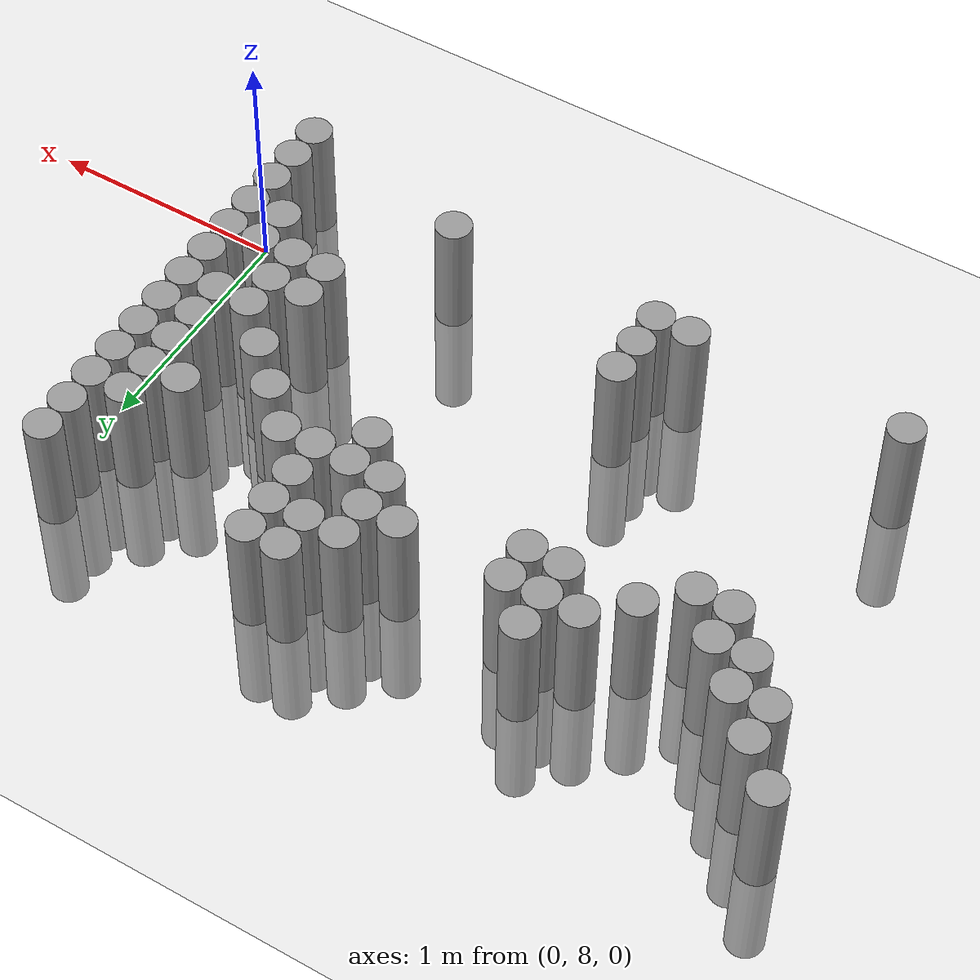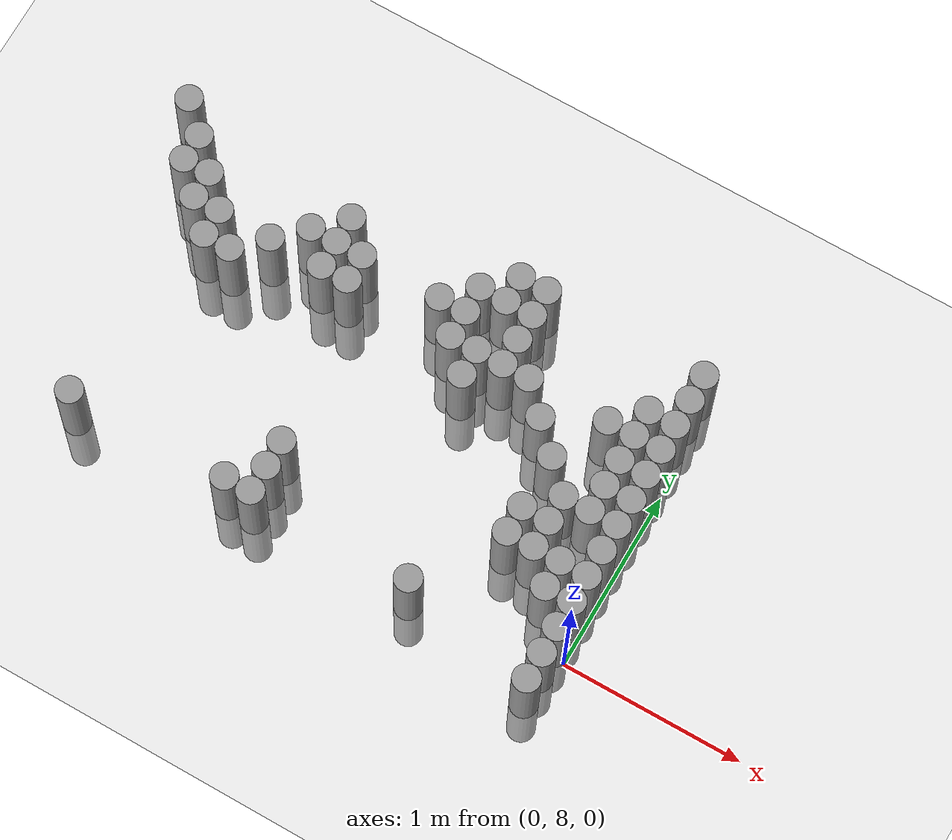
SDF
<sdf version="1.6">
 <world name="default">
  <model name="ground_plane">
   <static>1</static>
   <link name="link">
    <collision name="collision">
     <geometry><plane><normal>0 0 1</normal><size>100 100</size></plane></geometry>
     <surface><friction><ode><mu>100</mu><mu2>50</mu2></ode></friction></surface>
    </collision>
    <visual name="visual">
     <cast_shadows>0</cast_shadows>
     <geometry><plane><normal>0 0 1</normal><size>100 100</size></plane></geometry>
     <material>
      <script><uri>file://media/materials/scripts/gazebo.material</uri><name>Gazebo/Grey</name></script>
     </material>
    </visual>
   </link>
  </model>
  <model name="unit_cylinder_180">
   <pose>-3.075000 9.525000 0.000000 0.000000 0.000000 0.000000</pose>
   <link name="link">
    <inertial>
     <mass>1</mass>
     <inertia><ixx>0.145833</ixx><ixy>0</ixy><ixz>0</ixz><iyy>0.145833</iyy><iyz>0</iyz><izz>0.125</izz></inertia>
    </inertial>
    <collision name="collision">
     <geometry><cylinder><radius>0.075000</radius><length>1</length></cylinder></geometry>
    </collision>
    <visual name="visual">
     <geometry><cylinder><radius>0.075000</radius><length>1</length></cylinder></geometry>
     <material>
      <script><name>Gazebo/Grey</name><uri>file://media/materials/scripts/gazebo.material</uri></script>
     </material>
    </visual>
   </link>
  </model>
  <model name="unit_cylinder_184">
   <pose>-2.925000 9.225000 0.000000 0.000000 0.000000 0.000000</pose>
   <link name="link">
    <inertial>
     <mass>1</mass>
     <inertia><ixx>0.145833</ixx><ixy>0</ixy><ixz>0</ixz><iyy>0.145833</iyy><iyz>0</iyz><izz>0.125</izz></inertia>
    </inertial>
    <collision name="collision">
     <geometry><cylinder><radius>0.075000</radius><length>1</length></cylinder></geometry>
    </collision>
    <visual name="visual">
     <geometry><cylinder><radius>0.075000</radius><length>1</length></cylinder></geometry>
     <material>
      <script><name>Gazebo/Grey</name><uri>file://media/materials/scripts/gazebo.material</uri></script>
     </material>
    </visual>
   </link>
  </model>
  <model name="unit_cylinder_185">
   <pose>-2.925000 9.375000 0.000000 0.000000 0.000000 0.000000</pose>
   <link name="link">
    <inertial>
     <mass>1</mass>
     <inertia><ixx>0.145833</ixx><ixy>0</ixy><ixz>0</ixz><iyy>0.145833</iyy><iyz>0</iyz><izz>0.125</izz></inertia>
    </inertial>
    <collision name="collision">
     <geometry><cylinder><radius>0.075000</radius><length>1</length></cylinder></geometry>
    </collision>
    <visual name="visual">
     <geometry><cylinder><radius>0.075000</radius><length>1</length></cylinder></geometry>
     <material>
      <script><name>Gazebo/Grey</name><uri>file://media/materials/scripts/gazebo.material</uri></script>
     </material>
    </visual>
   </link>
  </model>
  <model name="unit_cylinder_187">
   <pose>-2.775000 7.875000 0.000000 0.000000 0.000000 0.000000</pose>
   <link name="link">
    <inertial>
     <mass>1</mass>
     <inertia><ixx>0.145833</ixx><ixy>0</ixy><ixz>0</ixz><iyy>0.145833</iyy><iyz>0</iyz><izz>0.125</izz></inertia>
    </inertial>
    <collision name="collision">
     <geometry><cylinder><radius>0.075000</radius><length>1</length></cylinder></geometry>
    </collision>
    <visual name="visual">
     <geometry><cylinder><radius>0.075000</radius><length>1</length></cylinder></geometry>
     <material>
      <script><name>Gazebo/Grey</name><uri>file://media/materials/scripts/gazebo.material</uri></script>
     </material>
    </visual>
   </link>
  </model>
  <model name="unit_cylinder_188">
   <pose>-2.775000 9.075000 0.000000 0.000000 0.000000 0.000000</pose>
   <link name="link">
    <inertial>
     <mass>1</mass>
     <inertia><ixx>0.145833</ixx><ixy>0</ixy><ixz>0</ixz><iyy>0.145833</iyy><iyz>0</iyz><izz>0.125</izz></inertia>
    </inertial>
    <collision name="collision">
     <geometry><cylinder><radius>0.075000</radius><length>1</length></cylinder></geometry>
    </collision>
    <visual name="visual">
     <geometry><cylinder><radius>0.075000</radius><length>1</length></cylinder></geometry>
     <material>
      <script><name>Gazebo/Grey</name><uri>file://media/materials/scripts/gazebo.material</uri></script>
     </material>
    </visual>
   </link>
  </model>
  <model name="unit_cylinder_189">
   <pose>-2.775000 9.225000 0.000000 0.000000 0.000000 0.000000</pose>
   <link name="link">
    <inertial>
     <mass>1</mass>
     <inertia><ixx>0.145833</ixx><ixy>0</ixy><ixz>0</ixz><iyy>0.145833</iyy><iyz>0</iyz><izz>0.125</izz></inertia>
    </inertial>
    <collision name="collision">
     <geometry><cylinder><radius>0.075000</radius><length>1</length></cylinder></geometry>
    </collision>
    <visual name="visual">
     <geometry><cylinder><radius>0.075000</radius><length>1</length></cylinder></geometry>
     <material>
      <script><name>Gazebo/Grey</name><uri>file://media/materials/scripts/gazebo.material</uri></script>
     </material>
    </visual>
   </link>
  </model>
  <model name="unit_cylinder_192">
   <pose>-2.625000 8.925000 0.000000 0.000000 0.000000 0.000000</pose>
   <link name="link">
    <inertial>
     <mass>1</mass>
     <inertia><ixx>0.145833</ixx><ixy>0</ixy><ixz>0</ixz><iyy>0.145833</iyy><iyz>0</iyz><izz>0.125</izz></inertia>
    </inertial>
    <collision name="collision">
     <geometry><cylinder><radius>0.075000</radius><length>1</length></cylinder></geometry>
    </collision>
    <visual name="visual">
     <geometry><cylinder><radius>0.075000</radius><length>1</length></cylinder></geometry>
     <material>
      <script><name>Gazebo/Grey</name><uri>file://media/materials/scripts/gazebo.material</uri></script>
     </material>
    </visual>
   </link>
  </model>
  <model name="unit_cylinder_193">
   <pose>-2.625000 9.075000 0.000000 0.000000 0.000000 0.000000</pose>
   <link name="link">
    <inertial>
     <mass>1</mass>
     <inertia><ixx>0.145833</ixx><ixy>0</ixy><ixz>0</ixz><iyy>0.145833</iyy><iyz>0</iyz><izz>0.125</izz></inertia>
    </inertial>
    <collision name="collision">
     <geometry><cylinder><radius>0.075000</radius><length>1</length></cylinder></geometry>
    </collision>
    <visual name="visual">
     <geometry><cylinder><radius>0.075000</radius><length>1</length></cylinder></geometry>
     <material>
      <script><name>Gazebo/Grey</name><uri>file://media/materials/scripts/gazebo.material</uri></script>
     </material>
    </visual>
   </link>
  </model>
  <model name="unit_cylinder_196">
   <pose>-2.475000 8.925000 0.000000 0.000000 0.000000 0.000000</pose>
   <link name="link">
    <inertial>
     <mass>1</mass>
     <inertia><ixx>0.145833</ixx><ixy>0</ixy><ixz>0</ixz><iyy>0.145833</iyy><iyz>0</iyz><izz>0.125</izz></inertia>
    </inertial>
    <collision name="collision">
     <geometry><cylinder><radius>0.075000</radius><length>1</length></cylinder></geometry>
    </collision>
    <visual name="visual">
     <geometry><cylinder><radius>0.075000</radius><length>1</length></cylinder></geometry>
     <material>
      <script><name>Gazebo/Grey</name><uri>file://media/materials/scripts/gazebo.material</uri></script>
     </material>
    </visual>
   </link>
  </model>
  <model name="unit_cylinder_197">
   <pose>-2.325000 9.075000 0.000000 0.000000 0.000000 0.000000</pose>
   <link name="link">
    <inertial>
     <mass>1</mass>
     <inertia><ixx>0.145833</ixx><ixy>0</ixy><ixz>0</ixz><iyy>0.145833</iyy><iyz>0</iyz><izz>0.125</izz></inertia>
    </inertial>
    <collision name="collision">
     <geometry><cylinder><radius>0.075000</radius><length>1</length></cylinder></geometry>
    </collision>
    <visual name="visual">
     <geometry><cylinder><radius>0.075000</radius><length>1</length></cylinder></geometry>
     <material>
      <script><name>Gazebo/Grey</name><uri>file://media/materials/scripts/gazebo.material</uri></script>
     </material>
    </visual>
   </link>
  </model>
  <model name="unit_cylinder_198">
   <pose>-2.175000 9.225000 0.000000 0.000000 0.000000 0.000000</pose>
   <link name="link">
    <inertial>
     <mass>1</mass>
     <inertia><ixx>0.145833</ixx><ixy>0</ixy><ixz>0</ixz><iyy>0.145833</iyy><iyz>0</iyz><izz>0.125</izz></inertia>
    </inertial>
    <collision name="collision">
     <geometry><cylinder><radius>0.075000</radius><length>1</length></cylinder></geometry>
    </collision>
    <visual name="visual">
     <geometry><cylinder><radius>0.075000</radius><length>1</length></cylinder></geometry>
     <material>
      <script><name>Gazebo/Grey</name><uri>file://media/materials/scripts/gazebo.material</uri></script>
     </material>
    </visual>
   </link>
  </model>
  <model name="unit_cylinder_199">
   <pose>-2.025000 9.075000 0.000000 0.000000 0.000000 0.000000</pose>
   <link name="link">
    <inertial>
     <mass>1</mass>
     <inertia><ixx>0.145833</ixx><ixy>0</ixy><ixz>0</ixz><iyy>0.145833</iyy><iyz>0</iyz><izz>0.125</izz></inertia>
    </inertial>
    <collision name="collision">
     <geometry><cylinder><radius>0.075000</radius><length>1</length></cylinder></geometry>
    </collision>
    <visual name="visual">
     <geometry><cylinder><radius>0.075000</radius><length>1</length></cylinder></geometry>
     <material>
      <script><name>Gazebo/Grey</name><uri>file://media/materials/scripts/gazebo.material</uri></script>
     </material>
    </visual>
   </link>
  </model>
  <model name="unit_cylinder_200">
   <pose>-2.025000 9.225000 0.000000 0.000000 0.000000 0.000000</pose>
   <link name="link">
    <inertial>
     <mass>1</mass>
     <inertia><ixx>0.145833</ixx><ixy>0</ixy><ixz>0</ixz><iyy>0.145833</iyy><iyz>0</iyz><izz>0.125</izz></inertia>
    </inertial>
    <collision name="collision">
     <geometry><cylinder><radius>0.075000</radius><length>1</length></cylinder></geometry>
    </collision>
    <visual name="visual">
     <geometry><cylinder><radius>0.075000</radius><length>1</length></cylinder></geometry>
     <material>
      <script><name>Gazebo/Grey</name><uri>file://media/materials/scripts/gazebo.material</uri></script>
     </material>
    </visual>
   </link>
  </model>
  <model name="unit_cylinder_201">
   <pose>-2.025000 9.375000 0.000000 0.000000 0.000000 0.000000</pose>
   <link name="link">
    <inertial>
     <mass>1</mass>
     <inertia><ixx>0.145833</ixx><ixy>0</ixy><ixz>0</ixz><iyy>0.145833</iyy><iyz>0</iyz><izz>0.125</izz></inertia>
    </inertial>
    <collision name="collision">
     <geometry><cylinder><radius>0.075000</radius><length>1</length></cylinder></geometry>
    </collision>
    <visual name="visual">
     <geometry><cylinder><radius>0.075000</radius><length>1</length></cylinder></geometry>
     <material>
      <script><name>Gazebo/Grey</name><uri>file://media/materials/scripts/gazebo.material</uri></script>
     </material>
    </visual>
   </link>
  </model>
  <model name="unit_cylinder_203">
   <pose>-1.875000 7.875000 0.000000 0.000000 0.000000 0.000000</pose>
   <link name="link">
    <inertial>
     <mass>1</mass>
     <inertia><ixx>0.145833</ixx><ixy>0</ixy><ixz>0</ixz><iyy>0.145833</iyy><iyz>0</iyz><izz>0.125</izz></inertia>
    </inertial>
    <collision name="collision">
     <geometry><cylinder><radius>0.075000</radius><length>1</length></cylinder></geometry>
    </collision>
    <visual name="visual">
     <geometry><cylinder><radius>0.075000</radius><length>1</length></cylinder></geometry>
     <material>
      <script><name>Gazebo/Grey</name><uri>file://media/materials/scripts/gazebo.material</uri></script>
     </material>
    </visual>
   </link>
  </model>
  <model name="unit_cylinder_204">
   <pose>-1.875000 9.075000 0.000000 0.000000 0.000000 0.000000</pose>
   <link name="link">
    <inertial>
     <mass>1</mass>
     <inertia><ixx>0.145833</ixx><ixy>0</ixy><ixz>0</ixz><iyy>0.145833</iyy><iyz>0</iyz><izz>0.125</izz></inertia>
    </inertial>
    <collision name="collision">
     <geometry><cylinder><radius>0.075000</radius><length>1</length></cylinder></geometry>
    </collision>
    <visual name="visual">
     <geometry><cylinder><radius>0.075000</radius><length>1</length></cylinder></geometry>
     <material>
      <script><name>Gazebo/Grey</name><uri>file://media/materials/scripts/gazebo.material</uri></script>
     </material>
    </visual>
   </link>
  </model>
  <model name="unit_cylinder_205">
   <pose>-1.875000 9.225000 0.000000 0.000000 0.000000 0.000000</pose>
   <link name="link">
    <inertial>
     <mass>1</mass>
     <inertia><ixx>0.145833</ixx><ixy>0</ixy><ixz>0</ixz><iyy>0.145833</iyy><iyz>0</iyz><izz>0.125</izz></inertia>
    </inertial>
    <collision name="collision">
     <geometry><cylinder><radius>0.075000</radius><length>1</length></cylinder></geometry>
    </collision>
    <visual name="visual">
     <geometry><cylinder><radius>0.075000</radius><length>1</length></cylinder></geometry>
     <material>
      <script><name>Gazebo/Grey</name><uri>file://media/materials/scripts/gazebo.material</uri></script>
     </material>
    </visual>
   </link>
  </model>
  <model name="unit_cylinder_210">
   <pose>-1.725000 7.875000 0.000000 0.000000 0.000000 0.000000</pose>
   <link name="link">
    <inertial>
     <mass>1</mass>
     <inertia><ixx>0.145833</ixx><ixy>0</ixy><ixz>0</ixz><iyy>0.145833</iyy><iyz>0</iyz><izz>0.125</izz></inertia>
    </inertial>
    <collision name="collision">
     <geometry><cylinder><radius>0.075000</radius><length>1</length></cylinder></geometry>
    </collision>
    <visual name="visual">
     <geometry><cylinder><radius>0.075000</radius><length>1</length></cylinder></geometry>
     <material>
      <script><name>Gazebo/Grey</name><uri>file://media/materials/scripts/gazebo.material</uri></script>
     </material>
    </visual>
   </link>
  </model>
  <model name="unit_cylinder_211">
   <pose>-1.725000 8.025000 0.000000 0.000000 0.000000 0.000000</pose>
   <link name="link">
    <inertial>
     <mass>1</mass>
     <inertia><ixx>0.145833</ixx><ixy>0</ixy><ixz>0</ixz><iyy>0.145833</iyy><iyz>0</iyz><izz>0.125</izz></inertia>
    </inertial>
    <collision name="collision">
     <geometry><cylinder><radius>0.075000</radius><length>1</length></cylinder></geometry>
    </collision>
    <visual name="visual">
     <geometry><cylinder><radius>0.075000</radius><length>1</length></cylinder></geometry>
     <material>
      <script><name>Gazebo/Grey</name><uri>file://media/materials/scripts/gazebo.material</uri></script>
     </material>
    </visual>
   </link>
  </model>
  <model name="unit_cylinder_212">
   <pose>-1.725000 8.175000 0.000000 0.000000 0.000000 0.000000</pose>
   <link name="link">
    <inertial>
     <mass>1</mass>
     <inertia><ixx>0.145833</ixx><ixy>0</ixy><ixz>0</ixz><iyy>0.145833</iyy><iyz>0</iyz><izz>0.125</izz></inertia>
    </inertial>
    <collision name="collision">
     <geometry><cylinder><radius>0.075000</radius><length>1</length></cylinder></geometry>
    </collision>
    <visual name="visual">
     <geometry><cylinder><radius>0.075000</radius><length>1</length></cylinder></geometry>
     <material>
      <script><name>Gazebo/Grey</name><uri>file://media/materials/scripts/gazebo.material</uri></script>
     </material>
    </visual>
   </link>
  </model>
  <model name="unit_cylinder_222">
   <pose>-1.425000 9.225000 0.000000 0.000000 0.000000 0.000000</pose>
   <link name="link">
    <inertial>
     <mass>1</mass>
     <inertia><ixx>0.145833</ixx><ixy>0</ixy><ixz>0</ixz><iyy>0.145833</iyy><iyz>0</iyz><izz>0.125</izz></inertia>
    </inertial>
    <collision name="collision">
     <geometry><cylinder><radius>0.075000</radius><length>1</length></cylinder></geometry>
    </collision>
    <visual name="visual">
     <geometry><cylinder><radius>0.075000</radius><length>1</length></cylinder></geometry>
     <material>
      <script><name>Gazebo/Grey</name><uri>file://media/materials/scripts/gazebo.material</uri></script>
     </material>
    </visual>
   </link>
  </model>
  <model name="unit_cylinder_228">
   <pose>-1.275000 9.075000 0.000000 0.000000 0.000000 0.000000</pose>
   <link name="link">
    <inertial>
     <mass>1</mass>
     <inertia><ixx>0.145833</ixx><ixy>0</ixy><ixz>0</ixz><iyy>0.145833</iyy><iyz>0</iyz><izz>0.125</izz></inertia>
    </inertial>
    <collision name="collision">
     <geometry><cylinder><radius>0.075000</radius><length>1</length></cylinder></geometry>
    </collision>
    <visual name="visual">
     <geometry><cylinder><radius>0.075000</radius><length>1</length></cylinder></geometry>
     <material>
      <script><name>Gazebo/Grey</name><uri>file://media/materials/scripts/gazebo.material</uri></script>
     </material>
    </visual>
   </link>
  </model>
  <model name="unit_cylinder_229">
   <pose>-1.275000 9.225000 0.000000 0.000000 0.000000 0.000000</pose>
   <link name="link">
    <inertial>
     <mass>1</mass>
     <inertia><ixx>0.145833</ixx><ixy>0</ixy><ixz>0</ixz><iyy>0.145833</iyy><iyz>0</iyz><izz>0.125</izz></inertia>
    </inertial>
    <collision name="collision">
     <geometry><cylinder><radius>0.075000</radius><length>1</length></cylinder></geometry>
    </collision>
    <visual name="visual">
     <geometry><cylinder><radius>0.075000</radius><length>1</length></cylinder></geometry>
     <material>
      <script><name>Gazebo/Grey</name><uri>file://media/materials/scripts/gazebo.material</uri></script>
     </material>
    </visual>
   </link>
  </model>
  <model name="unit_cylinder_230">
   <pose>-1.275000 9.375000 0.000000 0.000000 0.000000 0.000000</pose>
   <link name="link">
    <inertial>
     <mass>1</mass>
     <inertia><ixx>0.145833</ixx><ixy>0</ixy><ixz>0</ixz><iyy>0.145833</iyy><iyz>0</iyz><izz>0.125</izz></inertia>
    </inertial>
    <collision name="collision">
     <geometry><cylinder><radius>0.075000</radius><length>1</length></cylinder></geometry>
    </collision>
    <visual name="visual">
     <geometry><cylinder><radius>0.075000</radius><length>1</length></cylinder></geometry>
     <material>
      <script><name>Gazebo/Grey</name><uri>file://media/materials/scripts/gazebo.material</uri></script>
     </material>
    </visual>
   </link>
  </model>
  <model name="unit_cylinder_234">
   <pose>-1.125000 8.925000 0.000000 0.000000 0.000000 0.000000</pose>
   <link name="link">
    <inertial>
     <mass>1</mass>
     <inertia><ixx>0.145833</ixx><ixy>0</ixy><ixz>0</ixz><iyy>0.145833</iyy><iyz>0</iyz><izz>0.125</izz></inertia>
    </inertial>
    <collision name="collision">
     <geometry><cylinder><radius>0.075000</radius><length>1</length></cylinder></geometry>
    </collision>
    <visual name="visual">
     <geometry><cylinder><radius>0.075000</radius><length>1</length></cylinder></geometry>
     <material>
      <script><name>Gazebo/Grey</name><uri>file://media/materials/scripts/gazebo.material</uri></script>
     </material>
    </visual>
   </link>
  </model>
  <model name="unit_cylinder_235">
   <pose>-1.125000 9.075000 0.000000 0.000000 0.000000 0.000000</pose>
   <link name="link">
    <inertial>
     <mass>1</mass>
     <inertia><ixx>0.145833</ixx><ixy>0</ixy><ixz>0</ixz><iyy>0.145833</iyy><iyz>0</iyz><izz>0.125</izz></inertia>
    </inertial>
    <collision name="collision">
     <geometry><cylinder><radius>0.075000</radius><length>1</length></cylinder></geometry>
    </collision>
    <visual name="visual">
     <geometry><cylinder><radius>0.075000</radius><length>1</length></cylinder></geometry>
     <material>
      <script><name>Gazebo/Grey</name><uri>file://media/materials/scripts/gazebo.material</uri></script>
     </material>
    </visual>
   </link>
  </model>
  <model name="unit_cylinder_236">
   <pose>-1.125000 9.375000 0.000000 0.000000 0.000000 0.000000</pose>
   <link name="link">
    <inertial>
     <mass>1</mass>
     <inertia><ixx>0.145833</ixx><ixy>0</ixy><ixz>0</ixz><iyy>0.145833</iyy><iyz>0</iyz><izz>0.125</izz></inertia>
    </inertial>
    <collision name="collision">
     <geometry><cylinder><radius>0.075000</radius><length>1</length></cylinder></geometry>
    </collision>
    <visual name="visual">
     <geometry><cylinder><radius>0.075000</radius><length>1</length></cylinder></geometry>
     <material>
      <script><name>Gazebo/Grey</name><uri>file://media/materials/scripts/gazebo.material</uri></script>
     </material>
    </visual>
   </link>
  </model>
  <model name="unit_cylinder_237">
   <pose>-1.125000 9.525000 0.000000 0.000000 0.000000 0.000000</pose>
   <link name="link">
    <inertial>
     <mass>1</mass>
     <inertia><ixx>0.145833</ixx><ixy>0</ixy><ixz>0</ixz><iyy>0.145833</iyy><iyz>0</iyz><izz>0.125</izz></inertia>
    </inertial>
    <collision name="collision">
     <geometry><cylinder><radius>0.075000</radius><length>1</length></cylinder></geometry>
    </collision>
    <visual name="visual">
     <geometry><cylinder><radius>0.075000</radius><length>1</length></cylinder></geometry>
     <material>
      <script><name>Gazebo/Grey</name><uri>file://media/materials/scripts/gazebo.material</uri></script>
     </material>
    </visual>
   </link>
  </model>
  <model name="unit_cylinder_241">
   <pose>-0.975000 9.075000 0.000000 0.000000 0.000000 0.000000</pose>
   <link name="link">
    <inertial>
     <mass>1</mass>
     <inertia><ixx>0.145833</ixx><ixy>0</ixy><ixz>0</ixz><iyy>0.145833</iyy><iyz>0</iyz><izz>0.125</izz></inertia>
    </inertial>
    <collision name="collision">
     <geometry><cylinder><radius>0.075000</radius><length>1</length></cylinder></geometry>
    </collision>
    <visual name="visual">
     <geometry><cylinder><radius>0.075000</radius><length>1</length></cylinder></geometry>
     <material>
      <script><name>Gazebo/Grey</name><uri>file://media/materials/scripts/gazebo.material</uri></script>
     </material>
    </visual>
   </link>
  </model>
  <model name="unit_cylinder_242">
   <pose>-0.975000 9.225000 0.000000 0.000000 0.000000 0.000000</pose>
   <link name="link">
    <inertial>
     <mass>1</mass>
     <inertia><ixx>0.145833</ixx><ixy>0</ixy><ixz>0</ixz><iyy>0.145833</iyy><iyz>0</iyz><izz>0.125</izz></inertia>
    </inertial>
    <collision name="collision">
     <geometry><cylinder><radius>0.075000</radius><length>1</length></cylinder></geometry>
    </collision>
    <visual name="visual">
     <geometry><cylinder><radius>0.075000</radius><length>1</length></cylinder></geometry>
     <material>
      <script><name>Gazebo/Grey</name><uri>file://media/materials/scripts/gazebo.material</uri></script>
     </material>
    </visual>
   </link>
  </model>
  <model name="unit_cylinder_243">
   <pose>-0.975000 9.375000 0.000000 0.000000 0.000000 0.000000</pose>
   <link name="link">
    <inertial>
     <mass>1</mass>
     <inertia><ixx>0.145833</ixx><ixy>0</ixy><ixz>0</ixz><iyy>0.145833</iyy><iyz>0</iyz><izz>0.125</izz></inertia>
    </inertial>
    <collision name="collision">
     <geometry><cylinder><radius>0.075000</radius><length>1</length></cylinder></geometry>
    </collision>
    <visual name="visual">
     <geometry><cylinder><radius>0.075000</radius><length>1</length></cylinder></geometry>
     <material>
      <script><name>Gazebo/Grey</name><uri>file://media/materials/scripts/gazebo.material</uri></script>
     </material>
    </visual>
   </link>
  </model>
  <model name="unit_cylinder_244">
   <pose>-0.975000 9.525000 0.000000 0.000000 0.000000 0.000000</pose>
   <link name="link">
    <inertial>
     <mass>1</mass>
     <inertia><ixx>0.145833</ixx><ixy>0</ixy><ixz>0</ixz><iyy>0.145833</iyy><iyz>0</iyz><izz>0.125</izz></inertia>
    </inertial>
    <collision name="collision">
     <geometry><cylinder><radius>0.075000</radius><length>1</length></cylinder></geometry>
    </collision>
    <visual name="visual">
     <geometry><cylinder><radius>0.075000</radius><length>1</length></cylinder></geometry>
     <material>
      <script><name>Gazebo/Grey</name><uri>file://media/materials/scripts/gazebo.material</uri></script>
     </material>
    </visual>
   </link>
  </model>
  <model name="unit_cylinder_246">
   <pose>-0.825000 7.875000 0.000000 0.000000 0.000000 0.000000</pose>
   <link name="link">
    <inertial>
     <mass>1</mass>
     <inertia><ixx>0.145833</ixx><ixy>0</ixy><ixz>0</ixz><iyy>0.145833</iyy><iyz>0</iyz><izz>0.125</izz></inertia>
    </inertial>
    <collision name="collision">
     <geometry><cylinder><radius>0.075000</radius><length>1</length></cylinder></geometry>
    </collision>
    <visual name="visual">
     <geometry><cylinder><radius>0.075000</radius><length>1</length></cylinder></geometry>
     <material>
      <script><name>Gazebo/Grey</name><uri>file://media/materials/scripts/gazebo.material</uri></script>
     </material>
    </visual>
   </link>
  </model>
  <model name="unit_cylinder_247">
   <pose>-0.825000 9.075000 0.000000 0.000000 0.000000 0.000000</pose>
   <link name="link">
    <inertial>
     <mass>1</mass>
     <inertia><ixx>0.145833</ixx><ixy>0</ixy><ixz>0</ixz><iyy>0.145833</iyy><iyz>0</iyz><izz>0.125</izz></inertia>
    </inertial>
    <collision name="collision">
     <geometry><cylinder><radius>0.075000</radius><length>1</length></cylinder></geometry>
    </collision>
    <visual name="visual">
     <geometry><cylinder><radius>0.075000</radius><length>1</length></cylinder></geometry>
     <material>
      <script><name>Gazebo/Grey</name><uri>file://media/materials/scripts/gazebo.material</uri></script>
     </material>
    </visual>
   </link>
  </model>
  <model name="unit_cylinder_248">
   <pose>-0.675000 8.925000 0.000000 0.000000 0.000000 0.000000</pose>
   <link name="link">
    <inertial>
     <mass>1</mass>
     <inertia><ixx>0.145833</ixx><ixy>0</ixy><ixz>0</ixz><iyy>0.145833</iyy><iyz>0</iyz><izz>0.125</izz></inertia>
    </inertial>
    <collision name="collision">
     <geometry><cylinder><radius>0.075000</radius><length>1</length></cylinder></geometry>
    </collision>
    <visual name="visual">
     <geometry><cylinder><radius>0.075000</radius><length>1</length></cylinder></geometry>
     <material>
      <script><name>Gazebo/Grey</name><uri>file://media/materials/scripts/gazebo.material</uri></script>
     </material>
    </visual>
   </link>
  </model>
  <model name="unit_cylinder_252">
   <pose>-0.525000 8.325000 0.000000 0.000000 0.000000 0.000000</pose>
   <link name="link">
    <inertial>
     <mass>1</mass>
     <inertia><ixx>0.145833</ixx><ixy>0</ixy><ixz>0</ixz><iyy>0.145833</iyy><iyz>0</iyz><izz>0.125</izz></inertia>
    </inertial>
    <collision name="collision">
     <geometry><cylinder><radius>0.075000</radius><length>1</length></cylinder></geometry>
    </collision>
    <visual name="visual">
     <geometry><cylinder><radius>0.075000</radius><length>1</length></cylinder></geometry>
     <material>
      <script><name>Gazebo/Grey</name><uri>file://media/materials/scripts/gazebo.material</uri></script>
     </material>
    </visual>
   </link>
  </model>
  <model name="unit_cylinder_253">
   <pose>-0.525000 8.475000 0.000000 0.000000 0.000000 0.000000</pose>
   <link name="link">
    <inertial>
     <mass>1</mass>
     <inertia><ixx>0.145833</ixx><ixy>0</ixy><ixz>0</ixz><iyy>0.145833</iyy><iyz>0</iyz><izz>0.125</izz></inertia>
    </inertial>
    <collision name="collision">
     <geometry><cylinder><radius>0.075000</radius><length>1</length></cylinder></geometry>
    </collision>
    <visual name="visual">
     <geometry><cylinder><radius>0.075000</radius><length>1</length></cylinder></geometry>
     <material>
      <script><name>Gazebo/Grey</name><uri>file://media/materials/scripts/gazebo.material</uri></script>
     </material>
    </visual>
   </link>
  </model>
  <model name="unit_cylinder_254">
   <pose>-0.525000 8.775000 0.000000 0.000000 0.000000 0.000000</pose>
   <link name="link">
    <inertial>
     <mass>1</mass>
     <inertia><ixx>0.145833</ixx><ixy>0</ixy><ixz>0</ixz><iyy>0.145833</iyy><iyz>0</iyz><izz>0.125</izz></inertia>
    </inertial>
    <collision name="collision">
     <geometry><cylinder><radius>0.075000</radius><length>1</length></cylinder></geometry>
    </collision>
    <visual name="visual">
     <geometry><cylinder><radius>0.075000</radius><length>1</length></cylinder></geometry>
     <material>
      <script><name>Gazebo/Grey</name><uri>file://media/materials/scripts/gazebo.material</uri></script>
     </material>
    </visual>
   </link>
  </model>
  <model name="unit_cylinder_263">
   <pose>-0.375000 8.325000 0.000000 0.000000 0.000000 0.000000</pose>
   <link name="link">
    <inertial>
     <mass>1</mass>
     <inertia><ixx>0.145833</ixx><ixy>0</ixy><ixz>0</ixz><iyy>0.145833</iyy><iyz>0</iyz><izz>0.125</izz></inertia>
    </inertial>
    <collision name="collision">
     <geometry><cylinder><radius>0.075000</radius><length>1</length></cylinder></geometry>
    </collision>
    <visual name="visual">
     <geometry><cylinder><radius>0.075000</radius><length>1</length></cylinder></geometry>
     <material>
      <script><name>Gazebo/Grey</name><uri>file://media/materials/scripts/gazebo.material</uri></script>
     </material>
    </visual>
   </link>
  </model>
  <model name="unit_cylinder_264">
   <pose>-0.375000 8.475000 0.000000 0.000000 0.000000 0.000000</pose>
   <link name="link">
    <inertial>
     <mass>1</mass>
     <inertia><ixx>0.145833</ixx><ixy>0</ixy><ixz>0</ixz><iyy>0.145833</iyy><iyz>0</iyz><izz>0.125</izz></inertia>
    </inertial>
    <collision name="collision">
     <geometry><cylinder><radius>0.075000</radius><length>1</length></cylinder></geometry>
    </collision>
    <visual name="visual">
     <geometry><cylinder><radius>0.075000</radius><length>1</length></cylinder></geometry>
     <material>
      <script><name>Gazebo/Grey</name><uri>file://media/materials/scripts/gazebo.material</uri></script>
     </material>
    </visual>
   </link>
  </model>
  <model name="unit_cylinder_265">
   <pose>-0.375000 8.625000 0.000000 0.000000 0.000000 0.000000</pose>
   <link name="link">
    <inertial>
     <mass>1</mass>
     <inertia><ixx>0.145833</ixx><ixy>0</ixy><ixz>0</ixz><iyy>0.145833</iyy><iyz>0</iyz><izz>0.125</izz></inertia>
    </inertial>
    <collision name="collision">
     <geometry><cylinder><radius>0.075000</radius><length>1</length></cylinder></geometry>
    </collision>
    <visual name="visual">
     <geometry><cylinder><radius>0.075000</radius><length>1</length></cylinder></geometry>
     <material>
      <script><name>Gazebo/Grey</name><uri>file://media/materials/scripts/gazebo.material</uri></script>
     </material>
    </visual>
   </link>
  </model>
  <model name="unit_cylinder_266">
   <pose>-0.375000 9.075000 0.000000 0.000000 0.000000 0.000000</pose>
   <link name="link">
    <inertial>
     <mass>1</mass>
     <inertia><ixx>0.145833</ixx><ixy>0</ixy><ixz>0</ixz><iyy>0.145833</iyy><iyz>0</iyz><izz>0.125</izz></inertia>
    </inertial>
    <collision name="collision">
     <geometry><cylinder><radius>0.075000</radius><length>1</length></cylinder></geometry>
    </collision>
    <visual name="visual">
     <geometry><cylinder><radius>0.075000</radius><length>1</length></cylinder></geometry>
     <material>
      <script><name>Gazebo/Grey</name><uri>file://media/materials/scripts/gazebo.material</uri></script>
     </material>
    </visual>
   </link>
  </model>
  <model name="unit_cylinder_271">
   <pose>-0.225000 8.175000 0.000000 0.000000 0.000000 0.000000</pose>
   <link name="link">
    <inertial>
     <mass>1</mass>
     <inertia><ixx>0.145833</ixx><ixy>0</ixy><ixz>0</ixz><iyy>0.145833</iyy><iyz>0</iyz><izz>0.125</izz></inertia>
    </inertial>
    <collision name="collision">
     <geometry><cylinder><radius>0.075000</radius><length>1</length></cylinder></geometry>
    </collision>
    <visual name="visual">
     <geometry><cylinder><radius>0.075000</radius><length>1</length></cylinder></geometry>
     <material>
      <script><name>Gazebo/Grey</name><uri>file://media/materials/scripts/gazebo.material</uri></script>
     </material>
    </visual>
   </link>
  </model>
  <model name="unit_cylinder_272">
   <pose>-0.225000 8.325000 0.000000 0.000000 0.000000 0.000000</pose>
   <link name="link">
    <inertial>
     <mass>1</mass>
     <inertia><ixx>0.145833</ixx><ixy>0</ixy><ixz>0</ixz><iyy>0.145833</iyy><iyz>0</iyz><izz>0.125</izz></inertia>
    </inertial>
    <collision name="collision">
     <geometry><cylinder><radius>0.075000</radius><length>1</length></cylinder></geometry>
    </collision>
    <visual name="visual">
     <geometry><cylinder><radius>0.075000</radius><length>1</length></cylinder></geometry>
     <material>
      <script><name>Gazebo/Grey</name><uri>file://media/materials/scripts/gazebo.material</uri></script>
     </material>
    </visual>
   </link>
  </model>
  <model name="unit_cylinder_273">
   <pose>-0.225000 8.625000 0.000000 0.000000 0.000000 0.000000</pose>
   <link name="link">
    <inertial>
     <mass>1</mass>
     <inertia><ixx>0.145833</ixx><ixy>0</ixy><ixz>0</ixz><iyy>0.145833</iyy><iyz>0</iyz><izz>0.125</izz></inertia>
    </inertial>
    <collision name="collision">
     <geometry><cylinder><radius>0.075000</radius><length>1</length></cylinder></geometry>
    </collision>
    <visual name="visual">
     <geometry><cylinder><radius>0.075000</radius><length>1</length></cylinder></geometry>
     <material>
      <script><name>Gazebo/Grey</name><uri>file://media/materials/scripts/gazebo.material</uri></script>
     </material>
    </visual>
   </link>
  </model>
  <model name="unit_cylinder_274">
   <pose>-0.225000 8.775000 0.000000 0.000000 0.000000 0.000000</pose>
   <link name="link">
    <inertial>
     <mass>1</mass>
     <inertia><ixx>0.145833</ixx><ixy>0</ixy><ixz>0</ixz><iyy>0.145833</iyy><iyz>0</iyz><izz>0.125</izz></inertia>
    </inertial>
    <collision name="collision">
     <geometry><cylinder><radius>0.075000</radius><length>1</length></cylinder></geometry>
    </collision>
    <visual name="visual">
     <geometry><cylinder><radius>0.075000</radius><length>1</length></cylinder></geometry>
     <material>
      <script><name>Gazebo/Grey</name><uri>file://media/materials/scripts/gazebo.material</uri></script>
     </material>
    </visual>
   </link>
  </model>
  <model name="unit_cylinder_275">
   <pose>-0.225000 8.925000 0.000000 0.000000 0.000000 0.000000</pose>
   <link name="link">
    <inertial>
     <mass>1</mass>
     <inertia><ixx>0.145833</ixx><ixy>0</ixy><ixz>0</ixz><iyy>0.145833</iyy><iyz>0</iyz><izz>0.125</izz></inertia>
    </inertial>
    <collision name="collision">
     <geometry><cylinder><radius>0.075000</radius><length>1</length></cylinder></geometry>
    </collision>
    <visual name="visual">
     <geometry><cylinder><radius>0.075000</radius><length>1</length></cylinder></geometry>
     <material>
      <script><name>Gazebo/Grey</name><uri>file://media/materials/scripts/gazebo.material</uri></script>
     </material>
    </visual>
   </link>
  </model>
  <model name="unit_cylinder_276">
   <pose>-0.225000 9.075000 0.000000 0.000000 0.000000 0.000000</pose>
   <link name="link">
    <inertial>
     <mass>1</mass>
     <inertia><ixx>0.145833</ixx><ixy>0</ixy><ixz>0</ixz><iyy>0.145833</iyy><iyz>0</iyz><izz>0.125</izz></inertia>
    </inertial>
    <collision name="collision">
     <geometry><cylinder><radius>0.075000</radius><length>1</length></cylinder></geometry>
    </collision>
    <visual name="visual">
     <geometry><cylinder><radius>0.075000</radius><length>1</length></cylinder></geometry>
     <material>
      <script><name>Gazebo/Grey</name><uri>file://media/materials/scripts/gazebo.material</uri></script>
     </material>
    </visual>
   </link>
  </model>
  <model name="unit_cylinder_277">
   <pose>-0.225000 9.225000 0.000000 0.000000 0.000000 0.000000</pose>
   <link name="link">
    <inertial>
     <mass>1</mass>
     <inertia><ixx>0.145833</ixx><ixy>0</ixy><ixz>0</ixz><iyy>0.145833</iyy><iyz>0</iyz><izz>0.125</izz></inertia>
    </inertial>
    <collision name="collision">
     <geometry><cylinder><radius>0.075000</radius><length>1</length></cylinder></geometry>
    </collision>
    <visual name="visual">
     <geometry><cylinder><radius>0.075000</radius><length>1</length></cylinder></geometry>
     <material>
      <script><name>Gazebo/Grey</name><uri>file://media/materials/scripts/gazebo.material</uri></script>
     </material>
    </visual>
   </link>
  </model>
  <model name="unit_cylinder_295">
   <pose>-0.075000 7.725000 0.000000 0.000000 0.000000 0.000000</pose>
   <link name="link">
    <inertial>
     <mass>1</mass>
     <inertia><ixx>0.145833</ixx><ixy>0</ixy><ixz>0</ixz><iyy>0.145833</iyy><iyz>0</iyz><izz>0.125</izz></inertia>
    </inertial>
    <collision name="collision">
     <geometry><cylinder><radius>0.075000</radius><length>1</length></cylinder></geometry>
    </collision>
    <visual name="visual">
     <geometry><cylinder><radius>0.075000</radius><length>1</length></cylinder></geometry>
     <material>
      <script><name>Gazebo/Grey</name><uri>file://media/materials/scripts/gazebo.material</uri></script>
     </material>
    </visual>
   </link>
  </model>
  <model name="unit_cylinder_296">
   <pose>-0.075000 7.875000 0.000000 0.000000 0.000000 0.000000</pose>
   <link name="link">
    <inertial>
     <mass>1</mass>
     <inertia><ixx>0.145833</ixx><ixy>0</ixy><ixz>0</ixz><iyy>0.145833</iyy><iyz>0</iyz><izz>0.125</izz></inertia>
    </inertial>
    <collision name="collision">
     <geometry><cylinder><radius>0.075000</radius><length>1</length></cylinder></geometry>
    </collision>
    <visual name="visual">
     <geometry><cylinder><radius>0.075000</radius><length>1</length></cylinder></geometry>
     <material>
      <script><name>Gazebo/Grey</name><uri>file://media/materials/scripts/gazebo.material</uri></script>
     </material>
    </visual>
   </link>
  </model>
  <model name="unit_cylinder_297">
   <pose>-0.075000 8.025000 0.000000 0.000000 0.000000 0.000000</pose>
   <link name="link">
    <inertial>
     <mass>1</mass>
     <inertia><ixx>0.145833</ixx><ixy>0</ixy><ixz>0</ixz><iyy>0.145833</iyy><iyz>0</iyz><izz>0.125</izz></inertia>
    </inertial>
    <collision name="collision">
     <geometry><cylinder><radius>0.075000</radius><length>1</length></cylinder></geometry>
    </collision>
    <visual name="visual">
     <geometry><cylinder><radius>0.075000</radius><length>1</length></cylinder></geometry>
     <material>
      <script><name>Gazebo/Grey</name><uri>file://media/materials/scripts/gazebo.material</uri></script>
     </material>
    </visual>
   </link>
  </model>
  <model name="unit_cylinder_298">
   <pose>-0.075000 8.175000 0.000000 0.000000 0.000000 0.000000</pose>
   <link name="link">
    <inertial>
     <mass>1</mass>
     <inertia><ixx>0.145833</ixx><ixy>0</ixy><ixz>0</ixz><iyy>0.145833</iyy><iyz>0</iyz><izz>0.125</izz></inertia>
    </inertial>
    <collision name="collision">
     <geometry><cylinder><radius>0.075000</radius><length>1</length></cylinder></geometry>
    </collision>
    <visual name="visual">
     <geometry><cylinder><radius>0.075000</radius><length>1</length></cylinder></geometry>
     <material>
      <script><name>Gazebo/Grey</name><uri>file://media/materials/scripts/gazebo.material</uri></script>
     </material>
    </visual>
   </link>
  </model>
  <model name="unit_cylinder_299">
   <pose>-0.075000 8.325000 0.000000 0.000000 0.000000 0.000000</pose>
   <link name="link">
    <inertial>
     <mass>1</mass>
     <inertia><ixx>0.145833</ixx><ixy>0</ixy><ixz>0</ixz><iyy>0.145833</iyy><iyz>0</iyz><izz>0.125</izz></inertia>
    </inertial>
    <collision name="collision">
     <geometry><cylinder><radius>0.075000</radius><length>1</length></cylinder></geometry>
    </collision>
    <visual name="visual">
     <geometry><cylinder><radius>0.075000</radius><length>1</length></cylinder></geometry>
     <material>
      <script><name>Gazebo/Grey</name><uri>file://media/materials/scripts/gazebo.material</uri></script>
     </material>
    </visual>
   </link>
  </model>
  <model name="unit_cylinder_300">
   <pose>-0.075000 8.475000 0.000000 0.000000 0.000000 0.000000</pose>
   <link name="link">
    <inertial>
     <mass>1</mass>
     <inertia><ixx>0.145833</ixx><ixy>0</ixy><ixz>0</ixz><iyy>0.145833</iyy><iyz>0</iyz><izz>0.125</izz></inertia>
    </inertial>
    <collision name="collision">
     <geometry><cylinder><radius>0.075000</radius><length>1</length></cylinder></geometry>
    </collision>
    <visual name="visual">
     <geometry><cylinder><radius>0.075000</radius><length>1</length></cylinder></geometry>
     <material>
      <script><name>Gazebo/Grey</name><uri>file://media/materials/scripts/gazebo.material</uri></script>
     </material>
    </visual>
   </link>
  </model>
  <model name="unit_cylinder_301">
   <pose>-0.075000 8.625000 0.000000 0.000000 0.000000 0.000000</pose>
   <link name="link">
    <inertial>
     <mass>1</mass>
     <inertia><ixx>0.145833</ixx><ixy>0</ixy><ixz>0</ixz><iyy>0.145833</iyy><iyz>0</iyz><izz>0.125</izz></inertia>
    </inertial>
    <collision name="collision">
     <geometry><cylinder><radius>0.075000</radius><length>1</length></cylinder></geometry>
    </collision>
    <visual name="visual">
     <geometry><cylinder><radius>0.075000</radius><length>1</length></cylinder></geometry>
     <material>
      <script><name>Gazebo/Grey</name><uri>file://media/materials/scripts/gazebo.material</uri></script>
     </material>
    </visual>
   </link>
  </model>
  <model name="unit_cylinder_302">
   <pose>-0.075000 8.775000 0.000000 0.000000 0.000000 0.000000</pose>
   <link name="link">
    <inertial>
     <mass>1</mass>
     <inertia><ixx>0.145833</ixx><ixy>0</ixy><ixz>0</ixz><iyy>0.145833</iyy><iyz>0</iyz><izz>0.125</izz></inertia>
    </inertial>
    <collision name="collision">
     <geometry><cylinder><radius>0.075000</radius><length>1</length></cylinder></geometry>
    </collision>
    <visual name="visual">
     <geometry><cylinder><radius>0.075000</radius><length>1</length></cylinder></geometry>
     <material>
      <script><name>Gazebo/Grey</name><uri>file://media/materials/scripts/gazebo.material</uri></script>
     </material>
    </visual>
   </link>
  </model>
  <model name="unit_cylinder_303">
   <pose>-0.075000 8.925000 0.000000 0.000000 0.000000 0.000000</pose>
   <link name="link">
    <inertial>
     <mass>1</mass>
     <inertia><ixx>0.145833</ixx><ixy>0</ixy><ixz>0</ixz><iyy>0.145833</iyy><iyz>0</iyz><izz>0.125</izz></inertia>
    </inertial>
    <collision name="collision">
     <geometry><cylinder><radius>0.075000</radius><length>1</length></cylinder></geometry>
    </collision>
    <visual name="visual">
     <geometry><cylinder><radius>0.075000</radius><length>1</length></cylinder></geometry>
     <material>
      <script><name>Gazebo/Grey</name><uri>file://media/materials/scripts/gazebo.material</uri></script>
     </material>
    </visual>
   </link>
  </model>
  <model name="unit_cylinder_304">
   <pose>-0.075000 9.075000 0.000000 0.000000 0.000000 0.000000</pose>
   <link name="link">
    <inertial>
     <mass>1</mass>
     <inertia><ixx>0.145833</ixx><ixy>0</ixy><ixz>0</ixz><iyy>0.145833</iyy><iyz>0</iyz><izz>0.125</izz></inertia>
    </inertial>
    <collision name="collision">
     <geometry><cylinder><radius>0.075000</radius><length>1</length></cylinder></geometry>
    </collision>
    <visual name="visual">
     <geometry><cylinder><radius>0.075000</radius><length>1</length></cylinder></geometry>
     <material>
      <script><name>Gazebo/Grey</name><uri>file://media/materials/scripts/gazebo.material</uri></script>
     </material>
    </visual>
   </link>
  </model>
  <model name="unit_cylinder_305">
   <pose>-0.075000 9.225000 0.000000 0.000000 0.000000 0.000000</pose>
   <link name="link">
    <inertial>
     <mass>1</mass>
     <inertia><ixx>0.145833</ixx><ixy>0</ixy><ixz>0</ixz><iyy>0.145833</iyy><iyz>0</iyz><izz>0.125</izz></inertia>
    </inertial>
    <collision name="collision">
     <geometry><cylinder><radius>0.075000</radius><length>1</length></cylinder></geometry>
    </collision>
    <visual name="visual">
     <geometry><cylinder><radius>0.075000</radius><length>1</length></cylinder></geometry>
     <material>
      <script><name>Gazebo/Grey</name><uri>file://media/materials/scripts/gazebo.material</uri></script>
     </material>
    </visual>
   </link>
  </model>
  <model name="unit_cylinder_306">
   <pose>-0.075000 9.375000 0.000000 0.000000 0.000000 0.000000</pose>
   <link name="link">
    <inertial>
     <mass>1</mass>
     <inertia><ixx>0.145833</ixx><ixy>0</ixy><ixz>0</ixz><iyy>0.145833</iyy><iyz>0</iyz><izz>0.125</izz></inertia>
    </inertial>
    <collision name="collision">
     <geometry><cylinder><radius>0.075000</radius><length>1</length></cylinder></geometry>
    </collision>
    <visual name="visual">
     <geometry><cylinder><radius>0.075000</radius><length>1</length></cylinder></geometry>
     <material>
      <script><name>Gazebo/Grey</name><uri>file://media/materials/scripts/gazebo.material</uri></script>
     </material>
    </visual>
   </link>
  </model>
  <model name="unit_cylinder_307">
   <pose>-0.075000 9.525000 0.000000 0.000000 0.000000 0.000000</pose>
   <link name="link">
    <inertial>
     <mass>1</mass>
     <inertia><ixx>0.145833</ixx><ixy>0</ixy><ixz>0</ixz><iyy>0.145833</iyy><iyz>0</iyz><izz>0.125</izz></inertia>
    </inertial>
    <collision name="collision">
     <geometry><cylinder><radius>0.075000</radius><length>1</length></cylinder></geometry>
    </collision>
    <visual name="visual">
     <geometry><cylinder><radius>0.075000</radius><length>1</length></cylinder></geometry>
     <material>
      <script><name>Gazebo/Grey</name><uri>file://media/materials/scripts/gazebo.material</uri></script>
     </material>
    </visual>
   </link>
  </model>
 </world>
</sdf>
